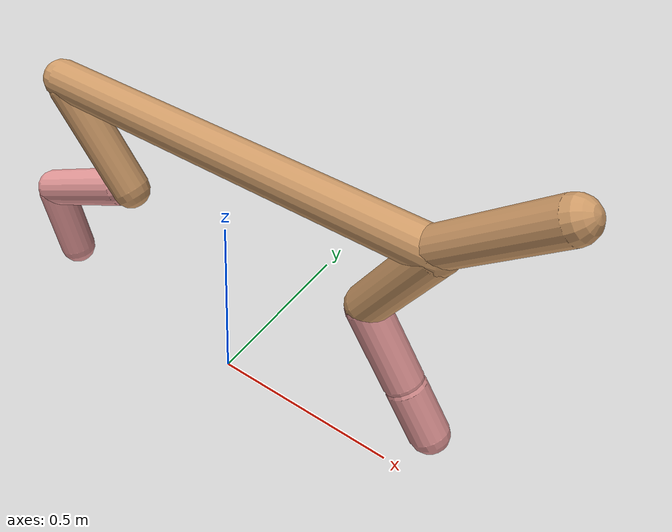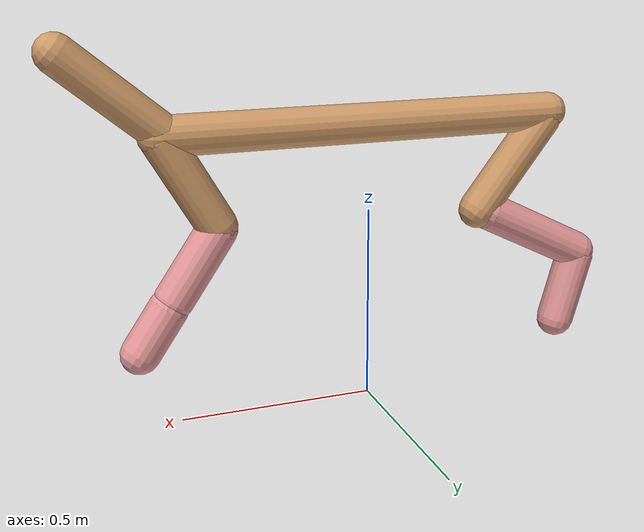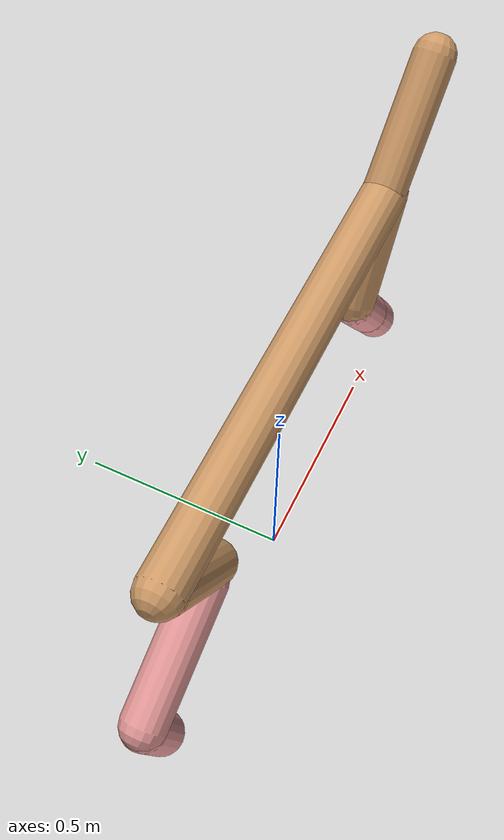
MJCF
<mujoco model="cheetah">
  <compiler angle="radian" coordinate="local" inertiafromgeom="true" settotalmass="14" />
  <default>
    <joint armature=".1" damping=".01" limited="true" solimplimit="0 .8 .03" solreflimit=".02 1" stiffness="8" />
    <geom conaffinity="0" condim="3" contype="1" friction="0.8 .1 .1" rgba="0.8 0.6 .4 1" solimp="0.0 0.8 0.01" solref="0.02 1" />
    <motor ctrllimited="true" ctrlrange="-1 1" />
  </default>
  <size nstack="300000" nuser_geom="1" />
  <option gravity="0 0 -9.81" timestep="0.01" />
  <worldbody>
    <body name="torso" pos="0.0 0.0 0.7232373797821622">
      <joint armature="0" axis="1 0 0" damping="0" limited="false" name="ignorex" pos="0 0 0" stiffness="0" type="slide" />
      <joint armature="0" axis="0 0 1" damping="0" limited="false" name="ignorez" pos="0 0 0" stiffness="0" type="slide" />
      <joint armature="0" axis="0 1 0" damping="0" limited="false" name="ignorey" pos="0 0 0" stiffness="0" type="hinge" />
      <geom fromto="-0.5 0.0 0.0 0.5219437098837942 0.0 0.0" name="torso" size="0.049551039282942785" type="capsule" />
      <geom axisangle="0 1 0 .87" name="head" pos="0.6219437098837942 0.0 0.1" size="0.04748035327750088 0.15" type="capsule" />

      <body name="bthigh" pos="-.5 0 0">
        <joint axis="0 1 0" damping="6" name="bthigh" pos="0 0 0" range="-.52 1.05" stiffness="240" type="hinge" />
        <geom axisangle="0 1 0 -3.8" name="bthigh" pos="0.10174099294367342 0.0 -0.13226329082677543" size="0.049748693945095374 0.14785544073594364" type="capsule" />
        <body name="bshin" pos="0.16348198588734683 0.0 -0.25452658165355085">
          <joint axis="0 1 0" damping="4.5" name="bshin" pos="0 0 0" range="-.785 .785" stiffness="180" type="hinge" />
          <geom axisangle="0 1 0 -2.03" name="bshin" pos="-0.14264205224467258 0.0 -0.07132102612233629" rgba="0.9 0.6 0.6 1" size="0.049748693945095374 0.1529539042095969" type="capsule" />
          <body name="bfoot" pos="-0.28528410448934516 0.0 -0.14264205224467258">
            <joint axis="0 1 0" damping="3" name="bfoot" pos="0 0 0" range="-.4 .785" stiffness="120" type="hinge" />
            <geom axisangle="0 1 0 -.27" name="bfoot" pos="0.030546947935231362 0.0 -0.09876846499058141" rgba="0.9 0.6 0.6 1" size="0.049748693945095374 0.09585111330468071" type="capsule" />
            <inertial mass="10" />
          </body>
        </body>
      </body>
      <body name="fthigh" pos="0.5219437098837942 0.0 0.0">
        <joint axis="0 1 0" damping="4.5" name="fthigh" pos="0 0 0" range="-1.5 0.8" stiffness="180" type="hinge" />
        <geom axisangle="0 1 0 .52" name="fthigh" pos="-0.06774458513652928 0.0 -0.11613357451976448" size="0.04986896588484422 0.12852382504803722" type="capsule" />
        <body name="fshin" pos="-0.13548917027305857 0.0 -0.23226714903952897">
          <joint axis="0 1 0" damping="3" name="fshin" pos="0 0 0" range="-1.2 1.1" stiffness="120" type="hinge" />
          <geom axisangle="0 1 0 -.6" name="fshin" pos="0.06291127545802054 0.0 -0.08710791986495152" rgba="0.9 0.6 0.6 1" size="0.04986896588484422 0.10243252221873642" type="capsule" />
          <body name="ffoot" pos="0.12582255091604108 0.0 -0.17421583972990304">
            <joint axis="0 1 0" damping="1.5" name="ffoot" pos="0 0 0" range="-3.1 -0.3" stiffness="60" type="hinge" />
            <geom axisangle="0 1 0 -.6" name="ffoot" pos="0.043726039165620414 0.0 -0.06801828314652066" rgba="0.9 0.6 0.6 1" size="0.04986896588484422 0.06764411844633537" type="capsule" />
            <inertial mass="10" />
          </body>
        </body>
      </body>
    </body>
  </worldbody>
  <actuator>
    <motor gear="120" joint="bthigh" name="bthigh" />
    <motor gear="90" joint="bshin" name="bshin" />
    <motor gear="60" joint="bfoot" name="bfoot" />
    <motor gear="120" joint="fthigh" name="fthigh" />
    <motor gear="60" joint="fshin" name="fshin" />
    <motor gear="30" joint="ffoot" name="ffoot" />
  </actuator>
</mujoco>
